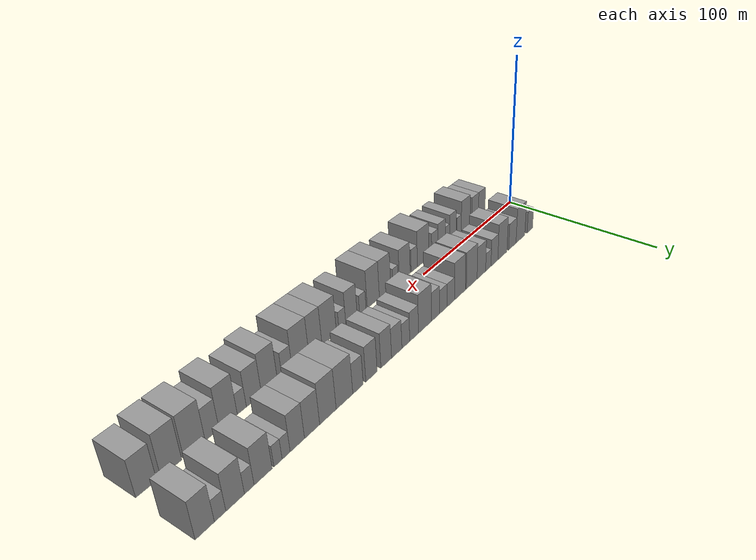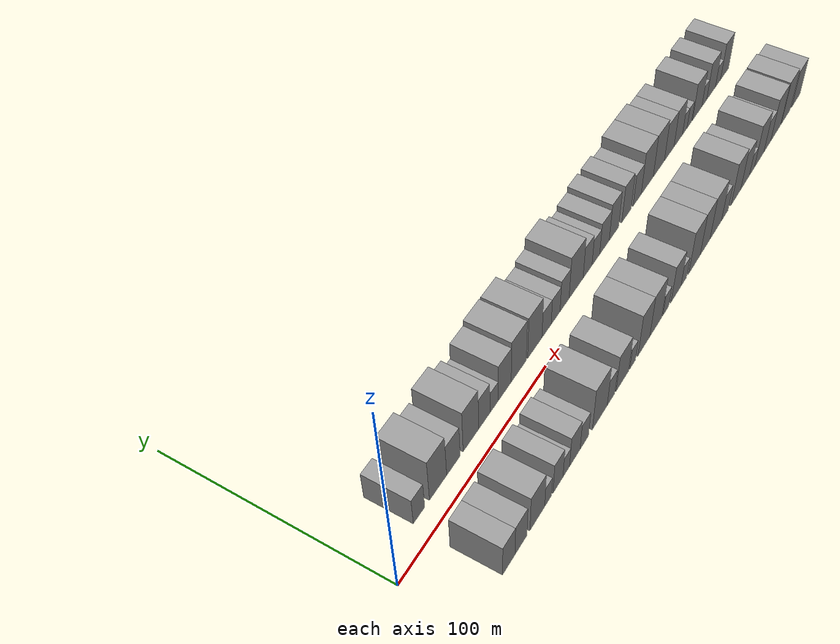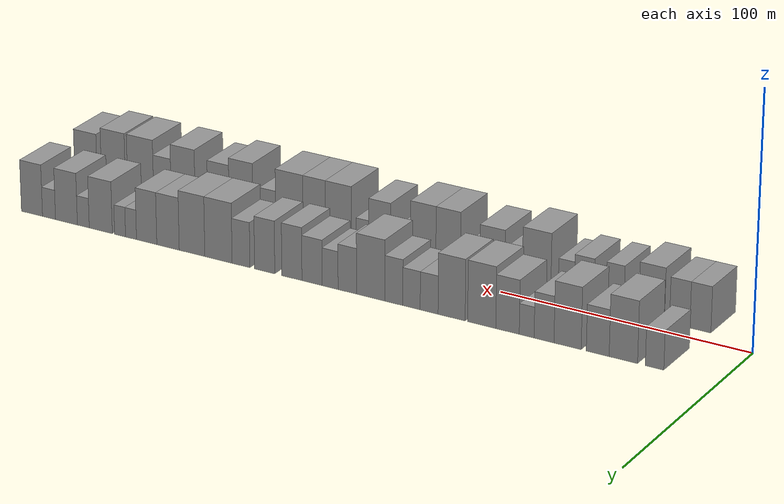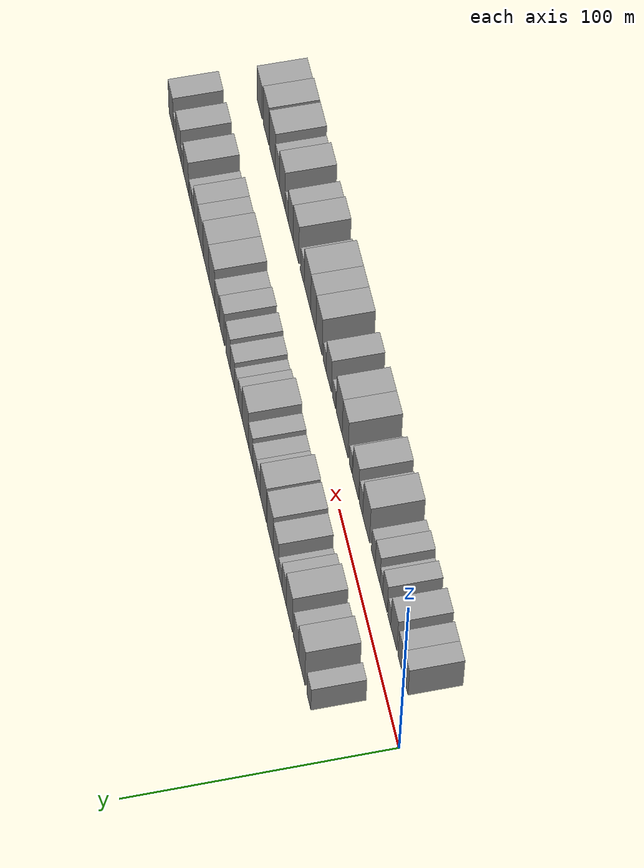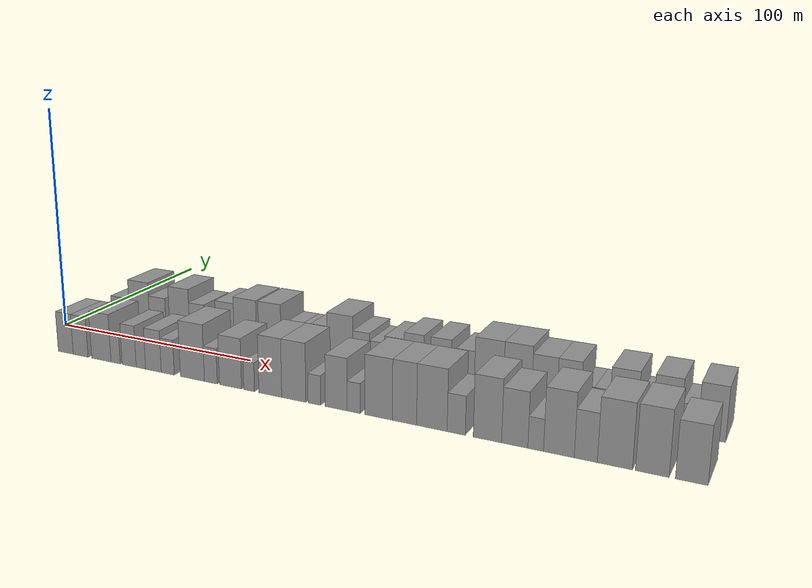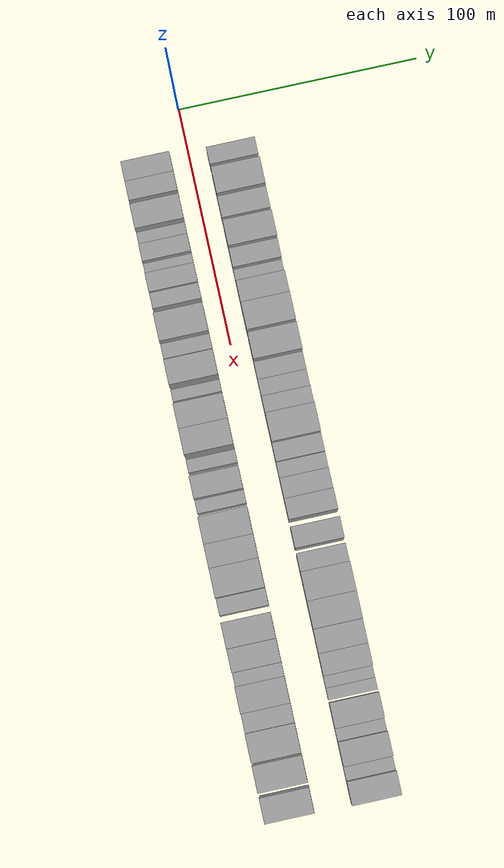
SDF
<sdf version="1.6">
 <world name="default">
  <scene>
   <sky><clouds><speed>12</speed></clouds></sky>
   <ambient>0.4 0.4 0.4 1</ambient>
   <background>0.7 0.7 0.7 1</background>
   <shadows>1</shadows>
  </scene>
  <gravity>0 0 -9.8066</gravity>
  <magnetic_field>6e-06 2.3e-05 -4.2e-05</magnetic_field>
  <physics default="0" name="default_physics" type="ode">
   <ode>
    <solver>
     <type>quick</type>
     <iters>10</iters>
     <sor>1.0</sor>
     <use_dynamic_moi_rescaling>0</use_dynamic_moi_rescaling>
    </solver>
    <constraints>
     <cfm>0</cfm>
     <erp>0.2</erp>
     <contact_max_correcting_vel>100</contact_max_correcting_vel>
     <contact_surface_layer>0.001</contact_surface_layer>
    </constraints>
   </ode>
   <max_step_size>0.004</max_step_size>
   <real_time_factor>1</real_time_factor>
   <real_time_update_rate>250</real_time_update_rate>
  </physics>
  <light name="sun" type="directional">
   <pose>0 0 10 0 0 0</pose>
   <diffuse>0.8 0.8 0.8 1</diffuse>
   <specular>0.2 0.2 0.2 1</specular>
   <attenuation>
    <range>1000</range>
    <constant>0.9</constant>
    <linear>0.01</linear>
    <quadratic>0.001</quadratic>
   </attenuation>
   <direction>-0.5 0.1 -0.9</direction>
  </light>
  <model name="building_1">
   <static>1</static>
   <pose>24.5756 17.5000 0 0.000000 0.000000 1.570796</pose>
   <link name="link">
    <pose>0 0 7.50 0 0 0</pose>
    <collision name="collision"><geometry><box><size>20.0000 7.1513 15.0000</size></box></geometry></collision>
    <visual name="visual">
     <cast_shadows>0</cast_shadows>
     <geometry><box><size>20.0000 7.1513 15.0000</size></box></geometry>
     <material>
      <script>
       <uri>model://grey_wall/materials/scripts</uri>
       <uri>model://grey_wall/materials/textures</uri>
       <name>vrc/grey_wall</name>
      </script>
     </material>
    </visual>
   </link>
  </model>
  <model name="building_2">
   <static>1</static>
   <pose>36.6838 17.5000 0 0.000000 0.000000 1.570796</pose>
   <link name="link">
    <pose>0 0 12.00 0 0 0</pose>
    <collision name="collision"><geometry><box><size>20.0000 11.0652 24.0000</size></box></geometry></collision>
    <visual name="visual">
     <cast_shadows>0</cast_shadows>
     <geometry><box><size>20.0000 11.0652 24.0000</size></box></geometry>
     <material>
      <script>
       <uri>model://grey_wall/materials/scripts</uri>
       <uri>model://grey_wall/materials/textures</uri>
       <name>vrc/grey_wall</name>
      </script>
     </material>
    </visual>
   </link>
  </model>
  <model name="building_3">
   <static>1</static>
   <pose>46.6993 17.5000 0 0.000000 0.000000 1.570796</pose>
   <link name="link">
    <pose>0 0 9.00 0 0 0</pose>
    <collision name="collision"><geometry><box><size>20.0000 8.9656 18.0000</size></box></geometry></collision>
    <visual name="visual">
     <cast_shadows>0</cast_shadows>
     <geometry><box><size>20.0000 8.9656 18.0000</size></box></geometry>
     <material>
      <script>
       <uri>model://grey_wall/materials/scripts</uri>
       <uri>model://grey_wall/materials/textures</uri>
       <name>vrc/grey_wall</name>
      </script>
     </material>
    </visual>
   </link>
  </model>
  <model name="building_4">
   <static>1</static>
   <pose>58.5501 17.5000 0 0.000000 0.000000 1.570796</pose>
   <link name="link">
    <pose>0 0 12.00 0 0 0</pose>
    <collision name="collision"><geometry><box><size>20.0000 10.7361 24.0000</size></box></geometry></collision>
    <visual name="visual">
     <cast_shadows>0</cast_shadows>
     <geometry><box><size>20.0000 10.7361 24.0000</size></box></geometry>
     <material>
      <script>
       <uri>model://grey_wall/materials/scripts</uri>
       <uri>model://grey_wall/materials/textures</uri>
       <name>vrc/grey_wall</name>
      </script>
     </material>
    </visual>
   </link>
  </model>
  <model name="building_5">
   <static>1</static>
   <pose>67.8658 17.5000 0 0.000000 0.000000 1.570796</pose>
   <link name="link">
    <pose>0 0 9.00 0 0 0</pose>
    <collision name="collision"><geometry><box><size>20.0000 7.8954 18.0000</size></box></geometry></collision>
    <visual name="visual">
     <cast_shadows>0</cast_shadows>
     <geometry><box><size>20.0000 7.8954 18.0000</size></box></geometry>
     <material>
      <script>
       <uri>model://grey_wall/materials/scripts</uri>
       <uri>model://grey_wall/materials/textures</uri>
       <name>vrc/grey_wall</name>
      </script>
     </material>
    </visual>
   </link>
  </model>
  <model name="building_6">
   <static>1</static>
   <pose>74.7823 17.5000 0 0.000000 0.000000 1.570796</pose>
   <link name="link">
    <pose>0 0 6.00 0 0 0</pose>
    <collision name="collision"><geometry><box><size>20.0000 5.9377 12.0000</size></box></geometry></collision>
    <visual name="visual">
     <cast_shadows>0</cast_shadows>
     <geometry><box><size>20.0000 5.9377 12.0000</size></box></geometry>
     <material>
      <script>
       <uri>model://grey_wall/materials/scripts</uri>
       <uri>model://grey_wall/materials/textures</uri>
       <name>vrc/grey_wall</name>
      </script>
     </material>
    </visual>
   </link>
  </model>
  <model name="building_7">
   <static>1</static>
   <pose>82.4449 17.5000 0 0.000000 0.000000 1.570796</pose>
   <link name="link">
    <pose>0 0 10.50 0 0 0</pose>
    <collision name="collision"><geometry><box><size>20.0000 9.3874 21.0000</size></box></geometry></collision>
    <visual name="visual">
     <cast_shadows>0</cast_shadows>
     <geometry><box><size>20.0000 9.3874 21.0000</size></box></geometry>
     <material>
      <script>
       <uri>model://grey_wall/materials/scripts</uri>
       <uri>model://grey_wall/materials/textures</uri>
       <name>vrc/grey_wall</name>
      </script>
     </material>
    </visual>
   </link>
  </model>
  <model name="building_8">
   <static>1</static>
   <pose>92.8267 17.5000 0 0.000000 0.000000 1.570796</pose>
   <link name="link">
    <pose>0 0 12.00 0 0 0</pose>
    <collision name="collision"><geometry><box><size>20.0000 11.3761 24.0000</size></box></geometry></collision>
    <visual name="visual">
     <cast_shadows>0</cast_shadows>
     <geometry><box><size>20.0000 11.3761 24.0000</size></box></geometry>
     <material>
      <script>
       <uri>model://grey_wall/materials/scripts</uri>
       <uri>model://grey_wall/materials/textures</uri>
       <name>vrc/grey_wall</name>
      </script>
     </material>
    </visual>
   </link>
  </model>
  <model name="building_9">
   <static>1</static>
   <pose>105.0311 17.5000 0 0.000000 0.000000 1.570796</pose>
   <link name="link">
    <pose>0 0 12.00 0 0 0</pose>
    <collision name="collision"><geometry><box><size>20.0000 11.0328 24.0000</size></box></geometry></collision>
    <visual name="visual">
     <cast_shadows>0</cast_shadows>
     <geometry><box><size>20.0000 11.0328 24.0000</size></box></geometry>
     <material>
      <script>
       <uri>model://grey_wall/materials/scripts</uri>
       <uri>model://grey_wall/materials/textures</uri>
       <name>vrc/grey_wall</name>
      </script>
     </material>
    </visual>
   </link>
  </model>
  <model name="building_10">
   <static>1</static>
   <pose>114.2059 17.5000 0 0.000000 0.000000 1.570796</pose>
   <link name="link">
    <pose>0 0 7.50 0 0 0</pose>
    <collision name="collision"><geometry><box><size>20.0000 7.3167 15.0000</size></box></geometry></collision>
    <visual name="visual">
     <cast_shadows>0</cast_shadows>
     <geometry><box><size>20.0000 7.3167 15.0000</size></box></geometry>
     <material>
      <script>
       <uri>model://grey_wall/materials/scripts</uri>
       <uri>model://grey_wall/materials/textures</uri>
       <name>vrc/grey_wall</name>
      </script>
     </material>
    </visual>
   </link>
  </model>
  <model name="building_11">
   <static>1</static>
   <pose>121.4314 17.5000 0 0.000000 0.000000 1.570796</pose>
   <link name="link">
    <pose>0 0 7.50 0 0 0</pose>
    <collision name="collision"><geometry><box><size>20.0000 7.1344 15.0000</size></box></geometry></collision>
    <visual name="visual">
     <cast_shadows>0</cast_shadows>
     <geometry><box><size>20.0000 7.1344 15.0000</size></box></geometry>
     <material>
      <script>
       <uri>model://grey_wall/materials/scripts</uri>
       <uri>model://grey_wall/materials/textures</uri>
       <name>vrc/grey_wall</name>
      </script>
     </material>
    </visual>
   </link>
  </model>
  <model name="building_12">
   <static>1</static>
   <pose>128.7313 17.5000 0 0.000000 0.000000 1.570796</pose>
   <link name="link">
    <pose>0 0 9.00 0 0 0</pose>
    <collision name="collision"><geometry><box><size>20.0000 7.4653 18.0000</size></box></geometry></collision>
    <visual name="visual">
     <cast_shadows>0</cast_shadows>
     <geometry><box><size>20.0000 7.4653 18.0000</size></box></geometry>
     <material>
      <script>
       <uri>model://grey_wall/materials/scripts</uri>
       <uri>model://grey_wall/materials/textures</uri>
       <name>vrc/grey_wall</name>
      </script>
     </material>
    </visual>
   </link>
  </model>
  <model name="building_13">
   <static>1</static>
   <pose>138.3595 17.5000 0 0.000000 0.000000 1.570796</pose>
   <link name="link">
    <pose>0 0 12.00 0 0 0</pose>
    <collision name="collision"><geometry><box><size>20.0000 11.7911 24.0000</size></box></geometry></collision>
    <visual name="visual">
     <cast_shadows>0</cast_shadows>
     <geometry><box><size>20.0000 11.7911 24.0000</size></box></geometry>
     <material>
      <script>
       <uri>model://grey_wall/materials/scripts</uri>
       <uri>model://grey_wall/materials/textures</uri>
       <name>vrc/grey_wall</name>
      </script>
     </material>
    </visual>
   </link>
  </model>
  <model name="building_14">
   <static>1</static>
   <pose>148.1029 17.5000 0 0.000000 0.000000 1.570796</pose>
   <link name="link">
    <pose>0 0 9.00 0 0 0</pose>
    <collision name="collision"><geometry><box><size>20.0000 7.6957 18.0000</size></box></geometry></collision>
    <visual name="visual">
     <cast_shadows>0</cast_shadows>
     <geometry><box><size>20.0000 7.6957 18.0000</size></box></geometry>
     <material>
      <script>
       <uri>model://grey_wall/materials/scripts</uri>
       <uri>model://grey_wall/materials/textures</uri>
       <name>vrc/grey_wall</name>
      </script>
     </material>
    </visual>
   </link>
  </model>
  <model name="building_15">
   <static>1</static>
   <pose>155.2797 17.5000 0 0.000000 0.000000 1.570796</pose>
   <link name="link">
    <pose>0 0 7.50 0 0 0</pose>
    <collision name="collision"><geometry><box><size>20.0000 6.6581 15.0000</size></box></geometry></collision>
    <visual name="visual">
     <cast_shadows>0</cast_shadows>
     <geometry><box><size>20.0000 6.6581 15.0000</size></box></geometry>
     <material>
      <script>
       <uri>model://grey_wall/materials/scripts</uri>
       <uri>model://grey_wall/materials/textures</uri>
       <name>vrc/grey_wall</name>
      </script>
     </material>
    </visual>
   </link>
  </model>
  <model name="building_16">
   <static>1</static>
   <pose>162.8929 17.5000 0 0.000000 0.000000 1.570796</pose>
   <link name="link">
    <pose>0 0 9.00 0 0 0</pose>
    <collision name="collision"><geometry><box><size>20.0000 8.5683 18.0000</size></box></geometry></collision>
    <visual name="visual">
     <cast_shadows>0</cast_shadows>
     <geometry><box><size>20.0000 8.5683 18.0000</size></box></geometry>
     <material>
      <script>
       <uri>model://grey_wall/materials/scripts</uri>
       <uri>model://grey_wall/materials/textures</uri>
       <name>vrc/grey_wall</name>
      </script>
     </material>
    </visual>
   </link>
  </model>
  <model name="building_17">
   <static>1</static>
   <pose>171.4461 17.5000 0 0.000000 0.000000 1.570796</pose>
   <link name="link">
    <pose>0 0 10.50 0 0 0</pose>
    <collision name="collision"><geometry><box><size>20.0000 8.5381 21.0000</size></box></geometry></collision>
    <visual name="visual">
     <cast_shadows>0</cast_shadows>
     <geometry><box><size>20.0000 8.5381 21.0000</size></box></geometry>
     <material>
      <script>
       <uri>model://grey_wall/materials/scripts</uri>
       <uri>model://grey_wall/materials/textures</uri>
       <name>vrc/grey_wall</name>
      </script>
     </material>
    </visual>
   </link>
  </model>
  <model name="building_18">
   <static>1</static>
   <pose>183.0365 17.5000 0 0.000000 0.000000 1.570796</pose>
   <link name="link">
    <pose>0 0 10.50 0 0 0</pose>
    <collision name="collision"><geometry><box><size>20.0000 8.6428 21.0000</size></box></geometry></collision>
    <visual name="visual">
     <cast_shadows>0</cast_shadows>
     <geometry><box><size>20.0000 8.6428 21.0000</size></box></geometry>
     <material>
      <script>
       <uri>model://grey_wall/materials/scripts</uri>
       <uri>model://grey_wall/materials/textures</uri>
       <name>vrc/grey_wall</name>
      </script>
     </material>
    </visual>
   </link>
  </model>
  <model name="building_19">
   <static>1</static>
   <pose>193.1942 17.5000 0 0.000000 0.000000 1.570796</pose>
   <link name="link">
    <pose>0 0 9.00 0 0 0</pose>
    <collision name="collision"><geometry><box><size>20.0000 7.6726 18.0000</size></box></geometry></collision>
    <visual name="visual">
     <cast_shadows>0</cast_shadows>
     <geometry><box><size>20.0000 7.6726 18.0000</size></box></geometry>
     <material>
      <script>
       <uri>model://grey_wall/materials/scripts</uri>
       <uri>model://grey_wall/materials/textures</uri>
       <name>vrc/grey_wall</name>
      </script>
     </material>
    </visual>
   </link>
  </model>
  <model name="building_20">
   <static>1</static>
   <pose>202.9414 17.5000 0 0.000000 0.000000 1.570796</pose>
   <link name="link">
    <pose>0 0 12.00 0 0 0</pose>
    <collision name="collision"><geometry><box><size>20.0000 11.8218 24.0000</size></box></geometry></collision>
    <visual name="visual">
     <cast_shadows>0</cast_shadows>
     <geometry><box><size>20.0000 11.8218 24.0000</size></box></geometry>
     <material>
      <script>
       <uri>model://grey_wall/materials/scripts</uri>
       <uri>model://grey_wall/materials/textures</uri>
       <name>vrc/grey_wall</name>
      </script>
     </material>
    </visual>
   </link>
  </model>
  <model name="building_21">
   <static>1</static>
   <pose>214.4415 17.5000 0 0.000000 0.000000 1.570796</pose>
   <link name="link">
    <pose>0 0 12.00 0 0 0</pose>
    <collision name="collision"><geometry><box><size>20.0000 11.1784 24.0000</size></box></geometry></collision>
    <visual name="visual">
     <cast_shadows>0</cast_shadows>
     <geometry><box><size>20.0000 11.1784 24.0000</size></box></geometry>
     <material>
      <script>
       <uri>model://grey_wall/materials/scripts</uri>
       <uri>model://grey_wall/materials/textures</uri>
       <name>vrc/grey_wall</name>
      </script>
     </material>
    </visual>
   </link>
  </model>
  <model name="building_22">
   <static>1</static>
   <pose>224.9569 17.5000 0 0.000000 0.000000 1.570796</pose>
   <link name="link">
    <pose>0 0 10.50 0 0 0</pose>
    <collision name="collision"><geometry><box><size>20.0000 9.8526 21.0000</size></box></geometry></collision>
    <visual name="visual">
     <cast_shadows>0</cast_shadows>
     <geometry><box><size>20.0000 9.8526 21.0000</size></box></geometry>
     <material>
      <script>
       <uri>model://grey_wall/materials/scripts</uri>
       <uri>model://grey_wall/materials/textures</uri>
       <name>vrc/grey_wall</name>
      </script>
     </material>
    </visual>
   </link>
  </model>
  <model name="building_23">
   <static>1</static>
   <pose>234.3726 17.5000 0 0.000000 0.000000 1.570796</pose>
   <link name="link">
    <pose>0 0 10.50 0 0 0</pose>
    <collision name="collision"><geometry><box><size>20.0000 8.9788 21.0000</size></box></geometry></collision>
    <visual name="visual">
     <cast_shadows>0</cast_shadows>
     <geometry><box><size>20.0000 8.9788 21.0000</size></box></geometry>
     <material>
      <script>
       <uri>model://grey_wall/materials/scripts</uri>
       <uri>model://grey_wall/materials/textures</uri>
       <name>vrc/grey_wall</name>
      </script>
     </material>
    </visual>
   </link>
  </model>
  <model name="building_24">
   <static>1</static>
   <pose>241.2950 17.5000 0 0.000000 0.000000 1.570796</pose>
   <link name="link">
    <pose>0 0 6.00 0 0 0</pose>
    <collision name="collision"><geometry><box><size>20.0000 4.8659 12.0000</size></box></geometry></collision>
    <visual name="visual">
     <cast_shadows>0</cast_shadows>
     <geometry><box><size>20.0000 4.8659 12.0000</size></box></geometry>
     <material>
      <script>
       <uri>model://grey_wall/materials/scripts</uri>
       <uri>model://grey_wall/materials/textures</uri>
       <name>vrc/grey_wall</name>
      </script>
     </material>
    </visual>
   </link>
  </model>
  <model name="building_25">
   <static>1</static>
   <pose>246.1628 17.5000 0 0.000000 0.000000 1.570796</pose>
   <link name="link">
    <pose>0 0 6.00 0 0 0</pose>
    <collision name="collision"><geometry><box><size>20.0000 4.8697 12.0000</size></box></geometry></collision>
    <visual name="visual">
     <cast_shadows>0</cast_shadows>
     <geometry><box><size>20.0000 4.8697 12.0000</size></box></geometry>
     <material>
      <script>
       <uri>model://grey_wall/materials/scripts</uri>
       <uri>model://grey_wall/materials/textures</uri>
       <name>vrc/grey_wall</name>
      </script>
     </material>
    </visual>
   </link>
  </model>
  <model name="building_26">
   <static>1</static>
   <pose>254.7649 17.5000 0 0.000000 0.000000 1.570796</pose>
   <link name="link">
    <pose>0 0 10.50 0 0 0</pose>
    <collision name="collision"><geometry><box><size>20.0000 10.3346 21.0000</size></box></geometry></collision>
    <visual name="visual">
     <cast_shadows>0</cast_shadows>
     <geometry><box><size>20.0000 10.3346 21.0000</size></box></geometry>
     <material>
      <script>
       <uri>model://grey_wall/materials/scripts</uri>
       <uri>model://grey_wall/materials/textures</uri>
       <name>vrc/grey_wall</name>
      </script>
     </material>
    </visual>
   </link>
  </model>
  <model name="building_27">
   <static>1</static>
   <pose>262.5951 17.5000 0 0.000000 0.000000 1.570796</pose>
   <link name="link">
    <pose>0 0 6.00 0 0 0</pose>
    <collision name="collision"><geometry><box><size>20.0000 5.3257 12.0000</size></box></geometry></collision>
    <visual name="visual">
     <cast_shadows>0</cast_shadows>
     <geometry><box><size>20.0000 5.3257 12.0000</size></box></geometry>
     <material>
      <script>
       <uri>model://grey_wall/materials/scripts</uri>
       <uri>model://grey_wall/materials/textures</uri>
       <name>vrc/grey_wall</name>
      </script>
     </material>
    </visual>
   </link>
  </model>
  <model name="building_28">
   <static>1</static>
   <pose>270.2034 17.5000 0 0.000000 0.000000 1.570796</pose>
   <link name="link">
    <pose>0 0 10.50 0 0 0</pose>
    <collision name="collision"><geometry><box><size>20.0000 9.8911 21.0000</size></box></geometry></collision>
    <visual name="visual">
     <cast_shadows>0</cast_shadows>
     <geometry><box><size>20.0000 9.8911 21.0000</size></box></geometry>
     <material>
      <script>
       <uri>model://grey_wall/materials/scripts</uri>
       <uri>model://grey_wall/materials/textures</uri>
       <name>vrc/grey_wall</name>
      </script>
     </material>
    </visual>
   </link>
  </model>
  <model name="building_29">
   <static>1</static>
   <pose>278.0984 17.5000 0 0.000000 0.000000 1.570796</pose>
   <link name="link">
    <pose>0 0 6.00 0 0 0</pose>
    <collision name="collision"><geometry><box><size>20.0000 5.8989 12.0000</size></box></geometry></collision>
    <visual name="visual">
     <cast_shadows>0</cast_shadows>
     <geometry><box><size>20.0000 5.8989 12.0000</size></box></geometry>
     <material>
      <script>
       <uri>model://grey_wall/materials/scripts</uri>
       <uri>model://grey_wall/materials/textures</uri>
       <name>vrc/grey_wall</name>
      </script>
     </material>
    </visual>
   </link>
  </model>
  <model name="building_30">
   <static>1</static>
   <pose>285.8414 17.5000 0 0.000000 0.000000 1.570796</pose>
   <link name="link">
    <pose>0 0 10.50 0 0 0</pose>
    <collision name="collision"><geometry><box><size>20.0000 9.5870 21.0000</size></box></geometry></collision>
    <visual name="visual">
     <cast_shadows>0</cast_shadows>
     <geometry><box><size>20.0000 9.5870 21.0000</size></box></geometry>
     <material>
      <script>
       <uri>model://grey_wall/materials/scripts</uri>
       <uri>model://grey_wall/materials/textures</uri>
       <name>vrc/grey_wall</name>
      </script>
     </material>
    </visual>
   </link>
  </model>
  <model name="building_31">
   <static>1</static>
   <pose>24.1072 -17.5000 0 0.000000 0.000000 1.570796</pose>
   <link name="link">
    <pose>0 0 9.00 0 0 0</pose>
    <collision name="collision"><geometry><box><size>20.0000 8.2144 18.0000</size></box></geometry></collision>
    <visual name="visual">
     <cast_shadows>0</cast_shadows>
     <geometry><box><size>20.0000 8.2144 18.0000</size></box></geometry>
     <material>
      <script>
       <uri>model://grey_wall/materials/scripts</uri>
       <uri>model://grey_wall/materials/textures</uri>
       <name>vrc/grey_wall</name>
      </script>
     </material>
    </visual>
   </link>
  </model>
  <model name="building_32">
   <static>1</static>
   <pose>32.2235 -17.5000 0 0.000000 0.000000 1.570796</pose>
   <link name="link">
    <pose>0 0 9.00 0 0 0</pose>
    <collision name="collision"><geometry><box><size>20.0000 8.0181 18.0000</size></box></geometry></collision>
    <visual name="visual">
     <cast_shadows>0</cast_shadows>
     <geometry><box><size>20.0000 8.0181 18.0000</size></box></geometry>
     <material>
      <script>
       <uri>model://grey_wall/materials/scripts</uri>
       <uri>model://grey_wall/materials/textures</uri>
       <name>vrc/grey_wall</name>
      </script>
     </material>
    </visual>
   </link>
  </model>
  <model name="building_33">
   <static>1</static>
   <pose>43.3503 -17.5000 0 0.000000 0.000000 1.570796</pose>
   <link name="link">
    <pose>0 0 10.50 0 0 0</pose>
    <collision name="collision"><geometry><box><size>20.0000 10.2354 21.0000</size></box></geometry></collision>
    <visual name="visual">
     <cast_shadows>0</cast_shadows>
     <geometry><box><size>20.0000 10.2354 21.0000</size></box></geometry>
     <material>
      <script>
       <uri>model://grey_wall/materials/scripts</uri>
       <uri>model://grey_wall/materials/textures</uri>
       <name>vrc/grey_wall</name>
      </script>
     </material>
    </visual>
   </link>
  </model>
  <model name="building_34">
   <static>1</static>
   <pose>50.9042 -17.5000 0 0.000000 0.000000 1.570796</pose>
   <link name="link">
    <pose>0 0 6.00 0 0 0</pose>
    <collision name="collision"><geometry><box><size>20.0000 4.8725 12.0000</size></box></geometry></collision>
    <visual name="visual">
     <cast_shadows>0</cast_shadows>
     <geometry><box><size>20.0000 4.8725 12.0000</size></box></geometry>
     <material>
      <script>
       <uri>model://grey_wall/materials/scripts</uri>
       <uri>model://grey_wall/materials/textures</uri>
       <name>vrc/grey_wall</name>
      </script>
     </material>
    </visual>
   </link>
  </model>
  <model name="building_35">
   <static>1</static>
   <pose>57.9697 -17.5000 0 0.000000 0.000000 1.570796</pose>
   <link name="link">
    <pose>0 0 9.00 0 0 0</pose>
    <collision name="collision"><geometry><box><size>20.0000 7.2585 18.0000</size></box></geometry></collision>
    <visual name="visual">
     <cast_shadows>0</cast_shadows>
     <geometry><box><size>20.0000 7.2585 18.0000</size></box></geometry>
     <material>
      <script>
       <uri>model://grey_wall/materials/scripts</uri>
       <uri>model://grey_wall/materials/textures</uri>
       <name>vrc/grey_wall</name>
      </script>
     </material>
    </visual>
   </link>
  </model>
  <model name="building_36">
   <static>1</static>
   <pose>64.0042 -17.5000 0 0.000000 0.000000 1.570796</pose>
   <link name="link">
    <pose>0 0 6.00 0 0 0</pose>
    <collision name="collision"><geometry><box><size>20.0000 4.8106 12.0000</size></box></geometry></collision>
    <visual name="visual">
     <cast_shadows>0</cast_shadows>
     <geometry><box><size>20.0000 4.8106 12.0000</size></box></geometry>
     <material>
      <script>
       <uri>model://grey_wall/materials/scripts</uri>
       <uri>model://grey_wall/materials/textures</uri>
       <name>vrc/grey_wall</name>
      </script>
     </material>
    </visual>
   </link>
  </model>
  <model name="building_37">
   <static>1</static>
   <pose>70.3660 -17.5000 0 0.000000 0.000000 1.570796</pose>
   <link name="link">
    <pose>0 0 9.00 0 0 0</pose>
    <collision name="collision"><geometry><box><size>20.0000 7.9131 18.0000</size></box></geometry></collision>
    <visual name="visual">
     <cast_shadows>0</cast_shadows>
     <geometry><box><size>20.0000 7.9131 18.0000</size></box></geometry>
     <material>
      <script>
       <uri>model://grey_wall/materials/scripts</uri>
       <uri>model://grey_wall/materials/textures</uri>
       <name>vrc/grey_wall</name>
      </script>
     </material>
    </visual>
   </link>
  </model>
  <model name="building_38">
   <static>1</static>
   <pose>77.5662 -17.5000 0 0.000000 0.000000 1.570796</pose>
   <link name="link">
    <pose>0 0 7.50 0 0 0</pose>
    <collision name="collision"><geometry><box><size>20.0000 6.4871 15.0000</size></box></geometry></collision>
    <visual name="visual">
     <cast_shadows>0</cast_shadows>
     <geometry><box><size>20.0000 6.4871 15.0000</size></box></geometry>
     <material>
      <script>
       <uri>model://grey_wall/materials/scripts</uri>
       <uri>model://grey_wall/materials/textures</uri>
       <name>vrc/grey_wall</name>
      </script>
     </material>
    </visual>
   </link>
  </model>
  <model name="building_39">
   <static>1</static>
   <pose>89.6446 -17.5000 0 0.000000 0.000000 1.570796</pose>
   <link name="link">
    <pose>0 0 12.00 0 0 0</pose>
    <collision name="collision"><geometry><box><size>20.0000 11.6696 24.0000</size></box></geometry></collision>
    <visual name="visual">
     <cast_shadows>0</cast_shadows>
     <geometry><box><size>20.0000 11.6696 24.0000</size></box></geometry>
     <material>
      <script>
       <uri>model://grey_wall/materials/scripts</uri>
       <uri>model://grey_wall/materials/textures</uri>
       <name>vrc/grey_wall</name>
      </script>
     </material>
    </visual>
   </link>
  </model>
  <model name="building_40">
   <static>1</static>
   <pose>98.5626 -17.5000 0 0.000000 0.000000 1.570796</pose>
   <link name="link">
    <pose>0 0 7.50 0 0 0</pose>
    <collision name="collision"><geometry><box><size>20.0000 6.1666 15.0000</size></box></geometry></collision>
    <visual name="visual">
     <cast_shadows>0</cast_shadows>
     <geometry><box><size>20.0000 6.1666 15.0000</size></box></geometry>
     <material>
      <script>
       <uri>model://grey_wall/materials/scripts</uri>
       <uri>model://grey_wall/materials/textures</uri>
       <name>vrc/grey_wall</name>
      </script>
     </material>
    </visual>
   </link>
  </model>
  <model name="building_41">
   <static>1</static>
   <pose>107.8391 -17.5000 0 0.000000 0.000000 1.570796</pose>
   <link name="link">
    <pose>0 0 10.50 0 0 0</pose>
    <collision name="collision"><geometry><box><size>20.0000 10.3863 21.0000</size></box></geometry></collision>
    <visual name="visual">
     <cast_shadows>0</cast_shadows>
     <geometry><box><size>20.0000 10.3863 21.0000</size></box></geometry>
     <material>
      <script>
       <uri>model://grey_wall/materials/scripts</uri>
       <uri>model://grey_wall/materials/textures</uri>
       <name>vrc/grey_wall</name>
      </script>
     </material>
    </visual>
   </link>
  </model>
  <model name="building_42">
   <static>1</static>
   <pose>116.5083 -17.5000 0 0.000000 0.000000 1.570796</pose>
   <link name="link">
    <pose>0 0 6.00 0 0 0</pose>
    <collision name="collision"><geometry><box><size>20.0000 4.9520 12.0000</size></box></geometry></collision>
    <visual name="visual">
     <cast_shadows>0</cast_shadows>
     <geometry><box><size>20.0000 4.9520 12.0000</size></box></geometry>
     <material>
      <script>
       <uri>model://grey_wall/materials/scripts</uri>
       <uri>model://grey_wall/materials/textures</uri>
       <name>vrc/grey_wall</name>
      </script>
     </material>
    </visual>
   </link>
  </model>
  <model name="building_43">
   <static>1</static>
   <pose>126.1361 -17.5000 0 0.000000 0.000000 1.570796</pose>
   <link name="link">
    <pose>0 0 12.00 0 0 0</pose>
    <collision name="collision"><geometry><box><size>20.0000 10.3036 24.0000</size></box></geometry></collision>
    <visual name="visual">
     <cast_shadows>0</cast_shadows>
     <geometry><box><size>20.0000 10.3036 24.0000</size></box></geometry>
     <material>
      <script>
       <uri>model://grey_wall/materials/scripts</uri>
       <uri>model://grey_wall/materials/textures</uri>
       <name>vrc/grey_wall</name>
      </script>
     </material>
    </visual>
   </link>
  </model>
  <model name="building_44">
   <static>1</static>
   <pose>136.6012 -17.5000 0 0.000000 0.000000 1.570796</pose>
   <link name="link">
    <pose>0 0 12.00 0 0 0</pose>
    <collision name="collision"><geometry><box><size>20.0000 10.6266 24.0000</size></box></geometry></collision>
    <visual name="visual">
     <cast_shadows>0</cast_shadows>
     <geometry><box><size>20.0000 10.6266 24.0000</size></box></geometry>
     <material>
      <script>
       <uri>model://grey_wall/materials/scripts</uri>
       <uri>model://grey_wall/materials/textures</uri>
       <name>vrc/grey_wall</name>
      </script>
     </material>
    </visual>
   </link>
  </model>
  <model name="building_45">
   <static>1</static>
   <pose>145.6217 -17.5000 0 0.000000 0.000000 1.570796</pose>
   <link name="link">
    <pose>0 0 6.00 0 0 0</pose>
    <collision name="collision"><geometry><box><size>20.0000 5.4145 12.0000</size></box></geometry></collision>
    <visual name="visual">
     <cast_shadows>0</cast_shadows>
     <geometry><box><size>20.0000 5.4145 12.0000</size></box></geometry>
     <material>
      <script>
       <uri>model://grey_wall/materials/scripts</uri>
       <uri>model://grey_wall/materials/textures</uri>
       <name>vrc/grey_wall</name>
      </script>
     </material>
    </visual>
   </link>
  </model>
  <model name="building_46">
   <static>1</static>
   <pose>154.9749 -17.5000 0 0.000000 0.000000 1.570796</pose>
   <link name="link">
    <pose>0 0 10.50 0 0 0</pose>
    <collision name="collision"><geometry><box><size>20.0000 9.2919 21.0000</size></box></geometry></collision>
    <visual name="visual">
     <cast_shadows>0</cast_shadows>
     <geometry><box><size>20.0000 9.2919 21.0000</size></box></geometry>
     <material>
      <script>
       <uri>model://grey_wall/materials/scripts</uri>
       <uri>model://grey_wall/materials/textures</uri>
       <name>vrc/grey_wall</name>
      </script>
     </material>
    </visual>
   </link>
  </model>
  <model name="building_47">
   <static>1</static>
   <pose>162.3523 -17.5000 0 0.000000 0.000000 1.570796</pose>
   <link name="link">
    <pose>0 0 6.00 0 0 0</pose>
    <collision name="collision"><geometry><box><size>20.0000 5.4629 12.0000</size></box></geometry></collision>
    <visual name="visual">
     <cast_shadows>0</cast_shadows>
     <geometry><box><size>20.0000 5.4629 12.0000</size></box></geometry>
     <material>
      <script>
       <uri>model://grey_wall/materials/scripts</uri>
       <uri>model://grey_wall/materials/textures</uri>
       <name>vrc/grey_wall</name>
      </script>
     </material>
    </visual>
   </link>
  </model>
  <model name="building_48">
   <static>1</static>
   <pose>172.6568 -17.5000 0 0.000000 0.000000 1.570796</pose>
   <link name="link">
    <pose>0 0 12.00 0 0 0</pose>
    <collision name="collision"><geometry><box><size>20.0000 11.1460 24.0000</size></box></geometry></collision>
    <visual name="visual">
     <cast_shadows>0</cast_shadows>
     <geometry><box><size>20.0000 11.1460 24.0000</size></box></geometry>
     <material>
      <script>
       <uri>model://grey_wall/materials/scripts</uri>
       <uri>model://grey_wall/materials/textures</uri>
       <name>vrc/grey_wall</name>
      </script>
     </material>
    </visual>
   </link>
  </model>
  <model name="building_49">
   <static>1</static>
   <pose>183.0780 -17.5000 0 0.000000 0.000000 1.570796</pose>
   <link name="link">
    <pose>0 0 12.00 0 0 0</pose>
    <collision name="collision"><geometry><box><size>20.0000 9.6966 24.0000</size></box></geometry></collision>
    <visual name="visual">
     <cast_shadows>0</cast_shadows>
     <geometry><box><size>20.0000 9.6966 24.0000</size></box></geometry>
     <material>
      <script>
       <uri>model://grey_wall/materials/scripts</uri>
       <uri>model://grey_wall/materials/textures</uri>
       <name>vrc/grey_wall</name>
      </script>
     </material>
    </visual>
   </link>
  </model>
  <model name="building_50">
   <static>1</static>
   <pose>193.8861 -17.5000 0 0.000000 0.000000 1.570796</pose>
   <link name="link">
    <pose>0 0 12.00 0 0 0</pose>
    <collision name="collision"><geometry><box><size>20.0000 11.9195 24.0000</size></box></geometry></collision>
    <visual name="visual">
     <cast_shadows>0</cast_shadows>
     <geometry><box><size>20.0000 11.9195 24.0000</size></box></geometry>
     <material>
      <script>
       <uri>model://grey_wall/materials/scripts</uri>
       <uri>model://grey_wall/materials/textures</uri>
       <name>vrc/grey_wall</name>
      </script>
     </material>
    </visual>
   </link>
  </model>
  <model name="building_51">
   <static>1</static>
   <pose>203.3191 -17.5000 0 0.000000 0.000000 1.570796</pose>
   <link name="link">
    <pose>0 0 7.50 0 0 0</pose>
    <collision name="collision"><geometry><box><size>20.0000 6.9467 15.0000</size></box></geometry></collision>
    <visual name="visual">
     <cast_shadows>0</cast_shadows>
     <geometry><box><size>20.0000 6.9467 15.0000</size></box></geometry>
     <material>
      <script>
       <uri>model://grey_wall/materials/scripts</uri>
       <uri>model://grey_wall/materials/textures</uri>
       <name>vrc/grey_wall</name>
      </script>
     </material>
    </visual>
   </link>
  </model>
  <model name="building_52">
   <static>1</static>
   <pose>215.0579 -17.5000 0 0.000000 0.000000 1.570796</pose>
   <link name="link">
    <pose>0 0 12.00 0 0 0</pose>
    <collision name="collision"><geometry><box><size>20.0000 10.5309 24.0000</size></box></geometry></collision>
    <visual name="visual">
     <cast_shadows>0</cast_shadows>
     <geometry><box><size>20.0000 10.5309 24.0000</size></box></geometry>
     <material>
      <script>
       <uri>model://grey_wall/materials/scripts</uri>
       <uri>model://grey_wall/materials/textures</uri>
       <name>vrc/grey_wall</name>
      </script>
     </material>
    </visual>
   </link>
  </model>
  <model name="building_53">
   <static>1</static>
   <pose>225.0975 -17.5000 0 0.000000 0.000000 1.570796</pose>
   <link name="link">
    <pose>0 0 10.50 0 0 0</pose>
    <collision name="collision"><geometry><box><size>20.0000 9.5483 21.0000</size></box></geometry></collision>
    <visual name="visual">
     <cast_shadows>0</cast_shadows>
     <geometry><box><size>20.0000 9.5483 21.0000</size></box></geometry>
     <material>
      <script>
       <uri>model://grey_wall/materials/scripts</uri>
       <uri>model://grey_wall/materials/textures</uri>
       <name>vrc/grey_wall</name>
      </script>
     </material>
    </visual>
   </link>
  </model>
  <model name="building_54">
   <static>1</static>
   <pose>232.6678 -17.5000 0 0.000000 0.000000 1.570796</pose>
   <link name="link">
    <pose>0 0 6.00 0 0 0</pose>
    <collision name="collision"><geometry><box><size>20.0000 5.5923 12.0000</size></box></geometry></collision>
    <visual name="visual">
     <cast_shadows>0</cast_shadows>
     <geometry><box><size>20.0000 5.5923 12.0000</size></box></geometry>
     <material>
      <script>
       <uri>model://grey_wall/materials/scripts</uri>
       <uri>model://grey_wall/materials/textures</uri>
       <name>vrc/grey_wall</name>
      </script>
     </material>
    </visual>
   </link>
  </model>
  <model name="building_55">
   <static>1</static>
   <pose>240.8522 -17.5000 0 0.000000 0.000000 1.570796</pose>
   <link name="link">
    <pose>0 0 12.00 0 0 0</pose>
    <collision name="collision"><geometry><box><size>20.0000 10.7766 24.0000</size></box></geometry></collision>
    <visual name="visual">
     <cast_shadows>0</cast_shadows>
     <geometry><box><size>20.0000 10.7766 24.0000</size></box></geometry>
     <material>
      <script>
       <uri>model://grey_wall/materials/scripts</uri>
       <uri>model://grey_wall/materials/textures</uri>
       <name>vrc/grey_wall</name>
      </script>
     </material>
    </visual>
   </link>
  </model>
  <model name="building_56">
   <static>1</static>
   <pose>250.1936 -17.5000 0 0.000000 0.000000 1.570796</pose>
   <link name="link">
    <pose>0 0 9.00 0 0 0</pose>
    <collision name="collision"><geometry><box><size>20.0000 7.9061 18.0000</size></box></geometry></collision>
    <visual name="visual">
     <cast_shadows>0</cast_shadows>
     <geometry><box><size>20.0000 7.9061 18.0000</size></box></geometry>
     <material>
      <script>
       <uri>model://grey_wall/materials/scripts</uri>
       <uri>model://grey_wall/materials/textures</uri>
       <name>vrc/grey_wall</name>
      </script>
     </material>
    </visual>
   </link>
  </model>
  <model name="building_57">
   <static>1</static>
   <pose>260.0205 -17.5000 0 0.000000 0.000000 1.570796</pose>
   <link name="link">
    <pose>0 0 12.00 0 0 0</pose>
    <collision name="collision"><geometry><box><size>20.0000 11.7476 24.0000</size></box></geometry></collision>
    <visual name="visual">
     <cast_shadows>0</cast_shadows>
     <geometry><box><size>20.0000 11.7476 24.0000</size></box></geometry>
     <material>
      <script>
       <uri>model://grey_wall/materials/scripts</uri>
       <uri>model://grey_wall/materials/textures</uri>
       <name>vrc/grey_wall</name>
      </script>
     </material>
    </visual>
   </link>
  </model>
  <model name="building_58">
   <static>1</static>
   <pose>272.3598 -17.5000 0 0.000000 0.000000 1.570796</pose>
   <link name="link">
    <pose>0 0 12.00 0 0 0</pose>
    <collision name="collision"><geometry><box><size>20.0000 10.9312 24.0000</size></box></geometry></collision>
    <visual name="visual">
     <cast_shadows>0</cast_shadows>
     <geometry><box><size>20.0000 10.9312 24.0000</size></box></geometry>
     <material>
      <script>
       <uri>model://grey_wall/materials/scripts</uri>
       <uri>model://grey_wall/materials/textures</uri>
       <name>vrc/grey_wall</name>
      </script>
     </material>
    </visual>
   </link>
  </model>
  <model name="building_59">
   <static>1</static>
   <pose>284.9914 -17.5000 0 0.000000 0.000000 1.570796</pose>
   <link name="link">
    <pose>0 0 10.50 0 0 0</pose>
    <collision name="collision"><geometry><box><size>20.0000 10.3320 21.0000</size></box></geometry></collision>
    <visual name="visual">
     <cast_shadows>0</cast_shadows>
     <geometry><box><size>20.0000 10.3320 21.0000</size></box></geometry>
     <material>
      <script>
       <uri>model://grey_wall/materials/scripts</uri>
       <uri>model://grey_wall/materials/textures</uri>
       <name>vrc/grey_wall</name>
      </script>
     </material>
    </visual>
   </link>
  </model>
 </world>
</sdf>
